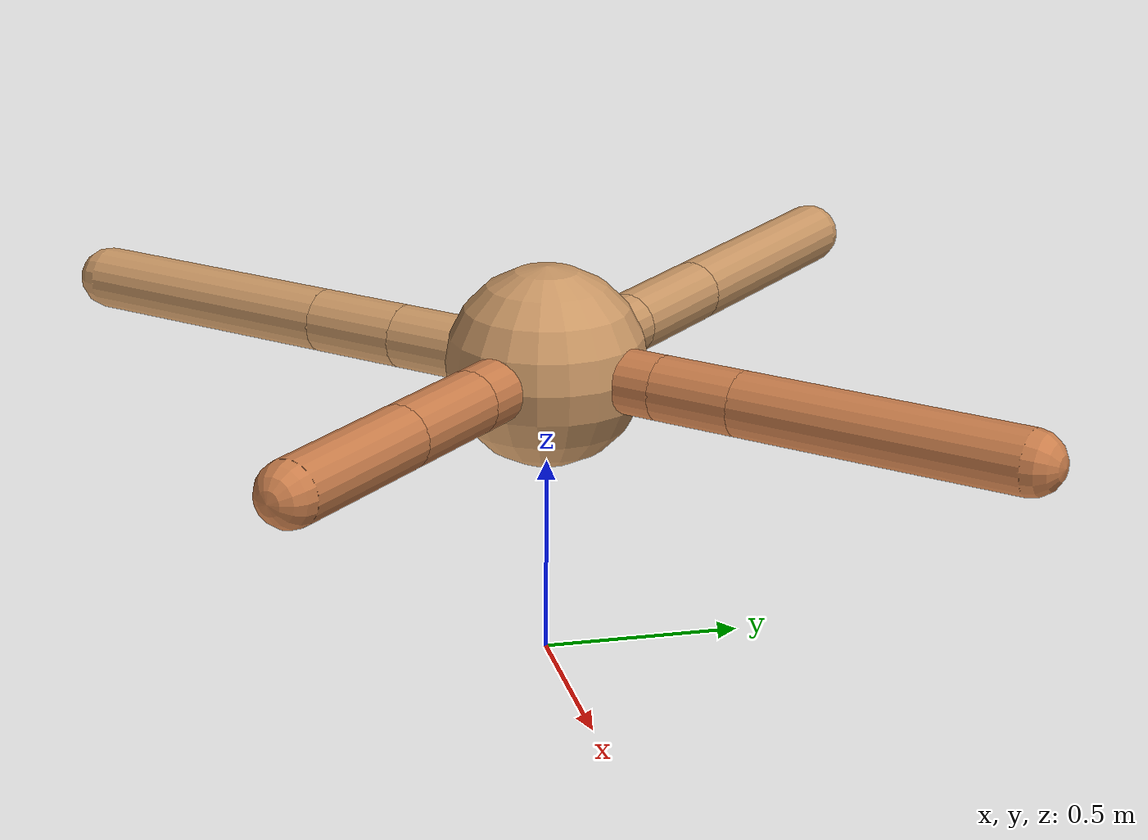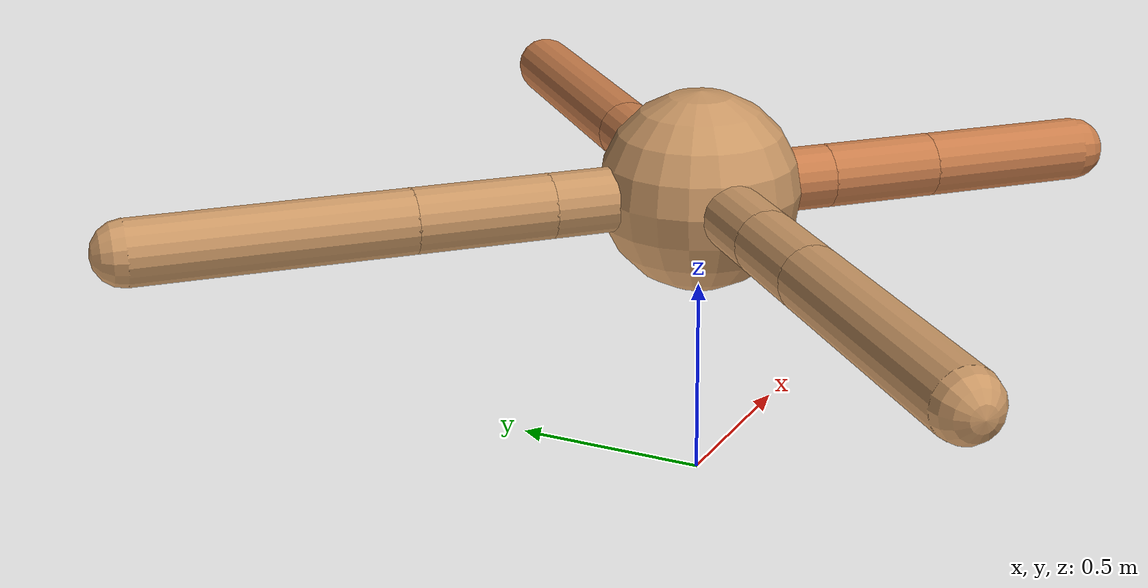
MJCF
<mujoco model="ant">
  <compiler angle="degree" coordinate="local" inertiafromgeom="true" />
  <option integrator="RK4" timestep="0.01" />
  <custom>
    <numeric data="0.0 0.0 0.55 1.0 0.0 0.0 0.0 0.0 1.0 0.0 -1.0 0.0 -1.0 0.0 1.0" name="init_qpos" />
  </custom>
  <default>
    <joint armature="1" damping="1" limited="true" />
    <geom conaffinity="0" condim="3" density="5.0" friction="1.5 0.1 0.1" margin="0.01" rgba="0.8 0.6 0.4 1" />
  </default>
  <worldbody>
    <body name="torso" pos="0 0 0.75">
      <geom name="torso_geom" pos="0 0 0" size="0.25" type="sphere" />

      <body name="front_left_leg" pos="0 0 0">
        <geom fromto="0.0 0.0 0.0 0.22984280379872357 0.22984280379872357 0.0" name="aux_1_geom" size="0.08" type="capsule" rgba=".8 .5 .3 1" />
        <body name="aux_1" pos="0.22984280379872357 0.22984280379872357 0.0">
          <joint axis="0 0 1" name="hip_1" pos="0.0 0.0 0.0" range="-40 40" type="hinge" />
          <geom fromto="0.0 0.0 0.0 0.14987904903171367 0.14987904903171367 0.0" name="left_leg_geom" size="0.08" type="capsule" rgba=".8 .5 .3 1" />
          <body pos="0.14987904903171367 0.14987904903171367 0.0" name="front_left_foot">
            <joint axis="-1 1 0" name="ankle_1" pos="0.0 0.0 0.0" range="30 100" type="hinge" />
            <geom fromto="0.0 0.0 0.0 0.5191698251589404 0.5191698251589404 0.0" name="left_ankle_geom" size="0.08" type="capsule" rgba=".8 .5 .3 1" />
          </body>
        </body>
      </body>
      <body name="front_right_leg" pos="0 0 0">
        <geom fromto="0.0 0.0 0.0 -0.27279159149893406 0.27279159149893406 0.0" name="aux_2_geom" size="0.08" type="capsule" />
        <body name="aux_2" pos="-0.27279159149893406 0.27279159149893406 0.0">
          <joint axis="0 0 1" name="hip_2" pos="0.0 0.0 0.0" range="-40 40" type="hinge" />
          <geom fromto="0.0 0.0 0.0 -0.2372698141399676 0.2372698141399676 0.0" name="right_leg_geom" size="0.08" type="capsule" />
          <body pos="-0.2372698141399676 0.2372698141399676 0.0" name="front_right_foot">
            <joint axis="1 1 0" name="ankle_2" pos="0.0 0.0 0.0" range="-100 -30" type="hinge" />
            <geom fromto="0.0 0.0 0.0 -0.4708730438373106 0.4708730438373106 0.0" name="right_ankle_geom" size="0.08" type="capsule" />
          </body>
        </body>
      </body>
      <body name="left_back_leg" pos="0 0 0">
        <geom fromto="0.0 0.0 0.0 -0.29904089942726564 -0.29904089942726564 0.0" name="aux_3_geom" size="0.08" type="capsule" />
        <body name="aux_3" pos="-0.29904089942726564 -0.29904089942726564 0.0">
          <joint axis="0 0 1" name="hip_3" pos="0.0 0.0 0.0" range="-40 40" type="hinge" />
          <geom fromto="0.0 0.0 0.0 -0.1753943240324711 -0.1753943240324711 0.0" name="back_leg_geom" size="0.08" type="capsule" />
          <body pos="-0.1753943240324711 -0.1753943240324711 0.0" name="left_back_foot">
            <joint axis="-1 1 0" name="ankle_3" pos="0.0 0.0 0.0" range="-100 -30" type="hinge" />
            <geom fromto="0.0 0.0 0.0 -0.5006154273699164 -0.5006154273699164 0.0" name="third_ankle_geom" size="0.08" type="capsule" />
          </body>
        </body>
      </body>
      <body name="right_back_leg" pos="0 0 0">
        <geom fromto="0.0 0.0 0.0 0.2381815866908649 -0.2381815866908649 0.0" name="aux_4_geom" size="0.08" type="capsule" rgba=".8 .5 .3 1" />
        <body name="aux_4" pos="0.2381815866908649 -0.2381815866908649 0.0">
          <joint axis="0 0 1" name="hip_4" pos="0.0 0.0 0.0" range="-40 40" type="hinge" />
          <geom fromto="0.0 0.0 0.0 0.1997470741809797 -0.1997470741809797 0.0" name="rightback_leg_geom" size="0.08" type="capsule" rgba=".8 .5 .3 1" />
          <body pos="0.1997470741809797 -0.1997470741809797 0.0" name="right_back_foot">
            <joint axis="1 1 0" name="ankle_4" pos="0.0 0.0 0.0" range="30 100" type="hinge" />
            <geom fromto="0.0 0.0 0.0 0.2969669180162164 -0.2969669180162164 0.0" name="fourth_ankle_geom" size="0.08" type="capsule" rgba=".8 .5 .3 1" />
          </body>
        </body>
      </body>
    </body>
  </worldbody>
  <actuator>
    <motor ctrllimited="true" ctrlrange="-1.0 1.0" joint="hip_4" gear="150" />
    <motor ctrllimited="true" ctrlrange="-1.0 1.0" joint="ankle_4" gear="150" />
    <motor ctrllimited="true" ctrlrange="-1.0 1.0" joint="hip_1" gear="150" />
    <motor ctrllimited="true" ctrlrange="-1.0 1.0" joint="ankle_1" gear="150" />
    <motor ctrllimited="true" ctrlrange="-1.0 1.0" joint="hip_2" gear="150" />
    <motor ctrllimited="true" ctrlrange="-1.0 1.0" joint="ankle_2" gear="150" />
    <motor ctrllimited="true" ctrlrange="-1.0 1.0" joint="hip_3" gear="150" />
    <motor ctrllimited="true" ctrlrange="-1.0 1.0" joint="ankle_3" gear="150" />
  </actuator>
</mujoco>
